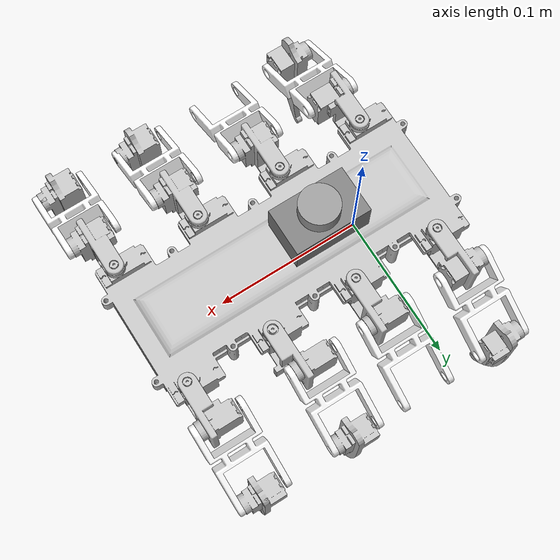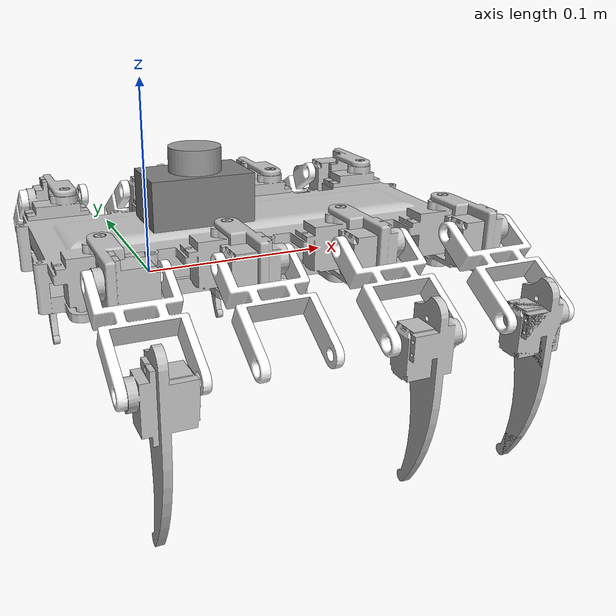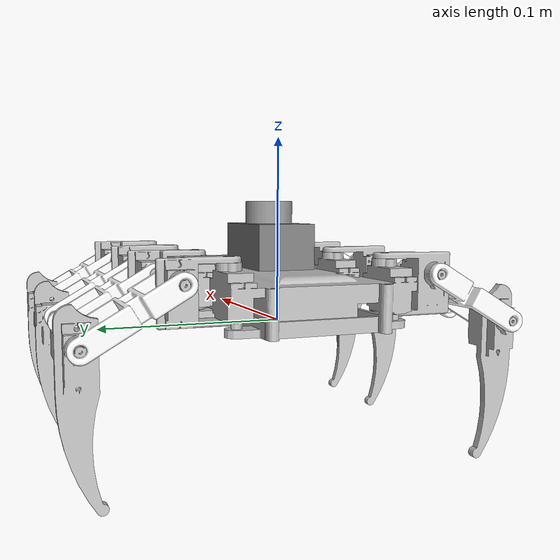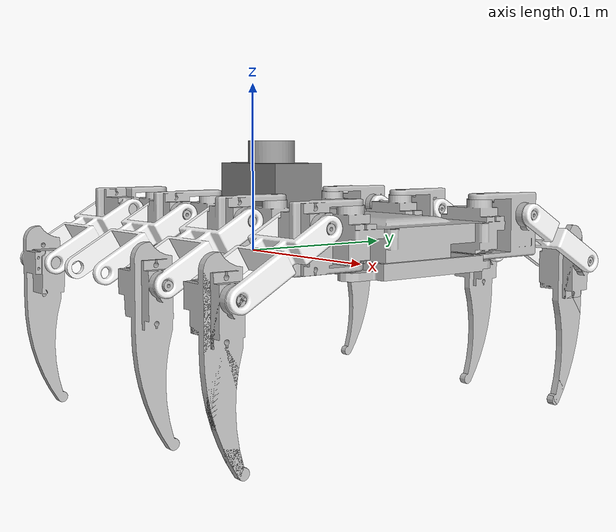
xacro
<?xml version="1.0"?>
<robot xmlns:xacro="http://www.ros.org/wiki/xacro" name="spider_description">
  <xacro:include filename="$(find spider_description)/urdf/lidar.gazebo" />
  <xacro:include filename="$(find spider_description)/urdf/realsense2_camera.xacro" />

  <link name="dummy_base" />

  <joint name="dummy_base_to_base_link" type="fixed">
    <parent link="dummy_base" />
    <child link="base_link" />
    <origin xyz="0 0 0" rpy="0 0 0" />
  </joint>
  <link name="base_link">
    <inertial>
      <origin xyz="0.0513553543804905 -0.00355010292388771 0.0158371951293718" rpy="0 0 0" />
      <mass value="0.206587820695411" />
      <inertia ixx="9.18101041743378E-05" ixy="-1.10969157176021E-06" ixz="-2.07334737671984E-08" iyy="0.000621158029436724" iyz="3.17880975410804E-08" izz="0.000699601373790156" />
    </inertial>
    <visual>
      <origin xyz="0 0 0" rpy="0 0 0" />
      <geometry>
        <mesh filename="$(find spider_description)/meshes/visual/base_link.STL" />
      </geometry>
      <material name="">
        <color rgba="0.752941176470588 0.752941176470588 0.752941176470588 1" />
      </material>
    </visual>
    <collision>
      <origin xyz="0 0 0" rpy="0 0 0" />
      <geometry>
        <mesh filename="$(find spider_description)/meshes/collision/base_link.STL" />
      </geometry>
    </collision>

  </link>
  <link name="RL1_coxa">
    <inertial>
      <origin xyz="-0.00349163844394271 0.017230005966643 0.0244390511872048" rpy="0 0 0" />
      <mass value="0.0118214531865819" />
      <inertia ixx="1.54720054808557E-06" ixy="-3.57557713352019E-08" ixz="-4.02762646820984E-08" iyy="1.03828147386784E-06" iyz="-8.80078006023775E-10" izz="1.47258288978444E-06" />
    </inertial>
    <visual>
      <origin xyz="0 0 0" rpy="0 0 0" />
      <geometry>
        <mesh filename="$(find spider_description)/meshes/visual/RL1_coxa.STL" />
      </geometry>
      <material name="">
        <color rgba="0.752941176470588 0.752941176470588 0.752941176470588 1" />
      </material>
    </visual>
    <collision>
      <origin xyz="0 0 0" rpy="0 0 0" />
      <geometry>
        <mesh filename="$(find spider_description)/meshes/collision/RL1_coxa.STL" />
      </geometry>
    </collision>
  </link>
  <joint name="joint1_coxa" type="continuous">
    <origin xyz="0.14757063197026 -0.0470606865446389 0.00464999999999999" rpy="1.5707963267949 0 0.216963279781621" />
    <parent link="base_link" />
    <child link="RL1_coxa" />
    <axis xyz="0 1 0" />
  </joint>
  <link name="RL1_fumer">
    <inertial>
      <origin xyz="-0.0264233888332985 -2.08166817117217E-17 -0.00234030420177739" rpy="0 0 0" />
      <mass value="0.00732061922605987" />
      <inertia ixx="1.66034801156123E-06" ixy="-8.99972506457694E-22" ixz="-1.499875031394E-09" iyy="3.3348950865199E-06" iyz="1.31159825877939E-21" izz="1.8515397312667E-06" />
    </inertial>
    <visual>
      <origin xyz="0 0 0" rpy="0 0 0" />
      <geometry>
        <mesh filename="$(find spider_description)/meshes/visual/RL1_fumer.STL" />
      </geometry>
      <material name="">
        <color rgba="1 1 1 1" />
      </material>
    </visual>
    <collision>
      <origin xyz="0 0 0" rpy="0 0 0" />
      <geometry>
        <mesh filename="$(find spider_description)/meshes/collision/RL1_fumer.STL" />
      </geometry>
    </collision>
  </link>
  <joint name="joint1_fumer" type="continuous">
    <origin xyz="-0.00591979008225604 0.0221000000000001 0.0268552804003611" rpy="-1.98602850950399 1.00791673675336 1.213911849099" />
    <parent link="RL1_coxa" />
    <child link="RL1_fumer" />
    <axis xyz="0 0 1" />
  </joint>
  <link name="RL1_tibia">
    <inertial>
      <origin xyz="0.00260154713513185 -0.0130975375024425 0.00072742607377918" rpy="0 0 0" />
      <mass value="0.013123891605465" />
      <inertia ixx="4.2299662226924E-06" ixy="1.19149413513681E-07" ixz="-1.17548988409948E-08" iyy="7.82194147309099E-07" iyz="-2.83284559215829E-07" izz="4.42455942176531E-06" />
    </inertial>
    <visual>
      <origin xyz="0 0 0" rpy="0 0 0" />
      <geometry>
        <mesh filename="$(find spider_description)/meshes/visual/RL1_tibia.STL" />
      </geometry>
      <material name="">
        <color rgba="0.752941176470588 0.752941176470588 0.752941176470588 1" />
      </material>
    </visual>
    <collision>
      <origin xyz="0 0 0" rpy="0 0 0" />
      <geometry>
        <mesh filename="$(find spider_description)/meshes/collision/RL1_tibia.STL" />
      </geometry>
    </collision>
  </link>
  <joint name="joint1_tibia" type="continuous">
    <origin xyz="-0.055 0 0" rpy="3.14159265358979 1.35383304701328 0.527393489709591" />
    <parent link="RL1_fumer" />
    <child link="RL1_tibia" />
    <axis xyz="-0.976555650922224 0 -0.215265093900221" />
  </joint>
  <link name="RL2_coxa">
    <inertial>
      <origin xyz="-0.00137410211994941 0.017230005966643 0.024648947347057" rpy="0 0 0" />
      <mass value="0.0118214531865819" />
      <inertia ixx="1.53973619894474E-06" ixy="-3.56987341340022E-08" ixz="-4.6080725279413E-08" iyy="1.03828147386784E-06" iyz="2.2022947808455E-09" izz="1.48004723892527E-06" />
    </inertial>
    <visual>
      <origin xyz="0 0 0" rpy="0 0 0" />
      <geometry>
        <mesh filename="$(find spider_description)/meshes/visual/RL2_coxa.STL" />
      </geometry>
      <material name="">
        <color rgba="0.752941176470588 0.752941176470588 0.752941176470588 1" />
      </material>
    </visual>
    <collision>
      <origin xyz="0 0 0" rpy="0 0 0" />
      <geometry>
        <mesh filename="$(find spider_description)/meshes/collision/RL2_coxa.STL" />
      </geometry>
    </collision>
  </link>
  <joint name="joint2_coxa" type="continuous">
    <origin xyz="0.0870706319702602 -0.0470606865446389 0.00464999999999997" rpy="1.5707963267949 0 0.130741621531395" />
    <parent link="base_link" />
    <child link="RL2_coxa" />
    <axis xyz="0 1 0" />
  </joint>
  <link name="RL2_fumer">
    <inertial>
      <origin xyz="-0.0264233888332987 6.24500451351651E-17 0.0581596957982228" rpy="0 0 0" />
      <mass value="0.00732061922605988" />
      <inertia ixx="1.66034801156124E-06" ixy="6.88214269644119E-22" ixz="-1.49987503139386E-09" iyy="3.33489508651991E-06" iyz="3.43796942092352E-22" izz="1.85153973126671E-06" />
    </inertial>
    <visual>
      <origin xyz="0 0 0" rpy="0 0 0" />
      <geometry>
        <mesh filename="$(find spider_description)/meshes/visual/RL2_fumer.STL" />
      </geometry>
      <material name="">
        <color rgba="1 1 1 1" />
      </material>
    </visual>
    <collision>
      <origin xyz="0 0 0" rpy="0 0 0" />
      <geometry>
        <mesh filename="$(find spider_description)/meshes/collision/RL2_fumer.STL" />
      </geometry>
    </collision>
  </link>
  <joint name="joint2_fumer" type="continuous">
    <origin xyz="0.0563985011948722 0.0221000000000001 0.0351526537116618" rpy="-1.82795682053227 1.0325993659782 1.3487143343647" />
    <parent link="RL2_coxa" />
    <child link="RL2_fumer" />
    <axis xyz="0 0 1" />
  </joint>
  <link name="RL2_tibia">
    <inertial>
      <origin xyz="-0.0562495143524853 -0.0130839593275274 -0.00677615060162512" rpy="0 0 0" />
      <mass value="0.013123891605465" />
      <inertia ixx="4.23019150195768E-06" ixy="7.84253861591576E-08" ixz="1.01977946227711E-09" iyy="7.65338483748999E-07" iyz="-1.6371410447347E-07" izz="4.44118980606013E-06" />
    </inertial>
    <visual>
      <origin xyz="0 0 0" rpy="0 0 0" />
      <geometry>
        <mesh filename="$(find spider_description)/meshes/visual/RL2_tibia.STL" />
      </geometry>
      <material name="">
        <color rgba="0.752941176470588 0.752941176470588 0.752941176470588 1" />
      </material>
    </visual>
    <collision>
      <origin xyz="0 0 0" rpy="0 0 0" />
      <geometry>
        <mesh filename="$(find spider_description)/meshes/collision/RL2_tibia.STL" />
      </geometry>
    </collision>
  </link>
  <joint name="joint2_tibia" type="continuous">
    <origin xyz="-0.055 0 0" rpy="-3.14159265358979 1.4400547052635 0.491910301591065" />
    <parent link="RL2_fumer" />
    <child link="RL2_tibia" />
    <axis xyz="-0.991465481571485 0 -0.130369470552824" />
  </joint>
  <link name="RL3_coxa">
    <inertial>
      <origin xyz="0.00349358134474833 0.017230005966643 0.0244387735236787" rpy="0 0 0" />
      <mass value="0.0118214531865818" />
      <inertia ixx="1.51968642178633E-06" ixy="-3.45709794269535E-08" ixz="-5.40202742068447E-08" iyy="1.03828147386784E-06" iyz="9.17044723735254E-09" izz="1.50009701608367E-06" />
    </inertial>
    <visual>
      <origin xyz="0 0 0" rpy="0 0 0" />
      <geometry>
        <mesh filename="$(find spider_description)/meshes/visual/RL3_coxa.STL" />
      </geometry>
      <material name="">
        <color rgba="0.752941176470588 0.752941176470588 0.752941176470588 1" />
      </material>
    </visual>
    <collision>
      <origin xyz="0 0 0" rpy="0 0 0" />
      <geometry>
        <mesh filename="$(find spider_description)/meshes/collision/RL3_coxa.STL" />
      </geometry>
    </collision>
  </link>
  <joint name="joint3_coxa" type="continuous">
    <origin xyz="0.0265706319702601 -0.0470606865446388 0.00464999999999998" rpy="1.5707963267949 0 -0.0669380319605713" />
    <parent link="base_link" />
    <child link="RL3_coxa" />
    <axis xyz="0 1 0" />
  </joint>
  <link name="RL3_fumer">
    <inertial>
      <origin xyz="-0.0264233888332993 -3.12250225675825E-16 0.118659695798224" rpy="0 0 0" />
      <mass value="0.00732061922605988" />
      <inertia ixx="1.66034801156124E-06" ixy="-5.29395592033938E-23" ixz="-1.49987503139564E-09" iyy="3.33489508651991E-06" iyz="-7.52681582497153E-23" izz="1.85153973126671E-06" />
    </inertial>
    <visual>
      <origin xyz="0 0 0" rpy="0 0 0" />
      <geometry>
        <mesh filename="$(find spider_description)/meshes/visual/RL3_fumer.STL" />
      </geometry>
      <material name="">
        <color rgba="1 1 1 1" />
      </material>
    </visual>
    <collision>
      <origin xyz="0 0 0" rpy="0 0 0" />
      <geometry>
        <mesh filename="$(find spider_description)/meshes/collision/RL3_fumer.STL" />
      </geometry>
    </collision>
  </link>
  <joint name="joint3_fumer" type="continuous">
    <origin xyz="0.122568440358491 0.0221000000000001 0.0193449587253901" rpy="-1.43751480215154 1.04333153380391 1.6861356410289" />
    <parent link="RL3_coxa" />
    <child link="RL3_fumer" />
    <axis xyz="0 0 1" />
  </joint>
  <link name="RL3_tibia">
    <inertial>
      <origin xyz="-0.118005534421714 -0.0130894519462948 0.00839605198202772" rpy="0 0 0" />
      <mass value="0.013123891605465" />
      <inertia ixx="4.23878065273637E-06" ixy="4.20082265127764E-08" ixz="4.18757931219034E-08" iyy="7.69154461537199E-07" iyz="-2.12494160023349E-07" izz="4.42878467749323E-06" />
    </inertial>
    <visual>
      <origin xyz="0 0 0" rpy="0 0 0" />
      <geometry>
        <mesh filename="$(find spider_description)/meshes/visual/RL3_tibia.STL" />
      </geometry>
      <material name="">
        <color rgba="0.752941176470588 0.752941176470588 0.752941176470588 1" />
      </material>
    </visual>
    <collision>
      <origin xyz="0 0 0" rpy="0 0 0" />
      <geometry>
        <mesh filename="$(find spider_description)/meshes/collision/RL3_tibia.STL" />
      </geometry>
    </collision>
  </link>
  <joint name="joint3_tibia" type="continuous">
    <origin xyz="-0.055 0 0" rpy="0 1.50385829483433 -2.63968666156776" />
    <parent link="RL3_fumer" />
    <child link="RL3_tibia" />
    <axis xyz="-0.997760486341758 0 0.0668880549504799" />
  </joint>
  <link name="RL4_coxa">
    <inertial>
      <origin xyz="0.000221643372700024 0.0172339889705058 0.0247738629223978" rpy="0 0 0" />
      <mass value="0.011831113051677" />
      <inertia ixx="1.51589381883954E-06" ixy="3.36933681099745E-08" ixz="5.44221588671393E-08" iyy="1.03946591481982E-06" iyz="1.04055511028782E-08" izz="1.50574484630922E-06" />
    </inertial>
    <visual>
      <origin xyz="0 0 0" rpy="0 0 0" />
      <geometry>
        <mesh filename="$(find spider_description)/meshes/visual/RL4_coxa.STL" />
      </geometry>
      <material name="">
        <color rgba="0.752941176470588 0.752941176470588 0.752941176470588 1" />
      </material>
    </visual>
    <collision>
      <origin xyz="0 0 0" rpy="0 0 0" />
      <geometry>
        <mesh filename="$(find spider_description)/meshes/collision/RL4_coxa.STL" />
      </geometry>
    </collision>
  </link>
  <joint name="joint4_coxa" type="continuous">
    <origin xyz="-0.0339293680297398 -0.0470606865446389 0.00465" rpy="1.5707963267949 0 0.105302517917499" />
    <parent link="base_link" />
    <child link="RL4_coxa" />
    <axis xyz="0 1 0" />
  </joint>
  <link name="RL4_fumer">
    <inertial>
      <origin xyz="-0.0264233888332989 6.93889390390723E-18 -0.176940304201777" rpy="0 0 0" />
      <mass value="0.00732061922605987" />
      <inertia ixx="1.66034801156123E-06" ixy="5.29395592033938E-22" ixz="-1.49987503139487E-09" iyy="3.3348950865199E-06" iyz="1.10684466970948E-22" izz="1.85153973126671E-06" />
    </inertial>
    <visual>
      <origin xyz="0 0 0" rpy="0 0 0" />
      <geometry>
        <mesh filename="$(find spider_description)/meshes/visual/RL4_fumer.STL" />
      </geometry>
      <material name="">
        <color rgba="1 1 1 1" />
      </material>
    </visual>
    <collision>
      <origin xyz="0 0 0" rpy="0 0 0" />
      <geometry>
        <mesh filename="$(find spider_description)/meshes/collision/RL4_fumer.STL" />
      </geometry>
    </collision>
  </link>
  <joint name="joint4_fumer" type="continuous">
    <origin xyz="0.177604166796266 0.0221000000000001 0.0464247771842149" rpy="1.3624761407313 1.03768167086435 1.39071609018261" />
    <parent link="RL4_coxa" />
    <child link="RL4_fumer" />
    <axis xyz="0 0 -1" />
  </joint>
  <link name="RL4_tibia">
    <inertial>
      <origin xyz="-0.175875204861774 -0.0124119057129758 -0.0227969872954879" rpy="0 0 0" />
      <mass value="0.013123891605465" />
      <inertia ixx="4.23942335897909E-06" ixy="1.02033754178209E-07" ixz="-4.08467258993433E-09" iyy="1.36774622886964E-06" iyz="-1.36758688607792E-06" izz="3.8295502039181E-06" />
    </inertial>
    <visual>
      <origin xyz="0 0 0" rpy="0 0 0" />
      <geometry>
        <mesh filename="$(find spider_description)/meshes/visual/RL4_tibia.STL" />
      </geometry>
      <material name="">
        <color rgba="0.752941176470588 0.752941176470588 0.752941176470588 1" />
      </material>
    </visual>
    <collision>
      <origin xyz="0 0 0" rpy="0 0 0" />
      <geometry>
        <mesh filename="$(find spider_description)/meshes/collision/RL4_tibia.STL" />
      </geometry>
    </collision>
  </link>
  <joint name="joint4_tibia" type="continuous">
    <origin xyz="-0.055 0 0" rpy="0 -1.4654938088774 -0.864064197891256" />
    <parent link="RL4_fumer" />
    <child link="RL4_tibia" />
    <axis xyz="-0.994460811195995 0 -0.105108015847522" />
  </joint>
  <link name="LL1_coxa">
    <inertial>
      <origin xyz="0.0170998828634738 0.0172339889705059 -0.0179272813314759" rpy="0 0 0" />
      <mass value="0.011831113051677" />
      <inertia ixx="1.45656947113537E-06" ixy="-1.69226594240046E-08" ixz="6.66890699376832E-09" iyy="1.03946591481982E-06" iyz="-3.09377139809669E-08" izz="1.56506919401288E-06" />
    </inertial>
    <visual>
      <origin xyz="0 0 0" rpy="0 0 0" />
      <geometry>
        <mesh filename="$(find spider_description)/meshes/visual/LL1_coxa.STL" />
      </geometry>
      <material name="">
        <color rgba="0.752941176470588 0.752941176470588 0.752941176470588 1" />
      </material>
    </visual>
    <collision>
      <origin xyz="0 0 0" rpy="0 0 0" />
      <geometry>
        <mesh filename="$(find spider_description)/meshes/collision/LL1_coxa.STL" />
      </geometry>
    </collision>
  </link>
  <joint name="joint5_coxa" type="continuous">
    <origin xyz="0.14757063197026 0.0399393134553611 0.00465000000000003" rpy="1.5707963267949 0 0.876029873391859" />
    <parent link="base_link" />
    <child link="LL1_coxa" />
    <axis xyz="0 -1 0" />
  </joint>
  <link name="LL1_fumer">
    <inertial>
      <origin xyz="-0.0264233888332986 0 0.00455969579822271" rpy="0 0 0" />
      <mass value="0.00732061922605989" />
      <inertia ixx="1.66034801156124E-06" ixy="-2.64697796016969E-22" ixz="-1.49987503139553E-09" iyy="3.33489508651991E-06" iyz="1.79363776074467E-21" izz="1.85153973126671E-06" />
    </inertial>
    <visual>
      <origin xyz="0 0 0" rpy="0 0 0" />
      <geometry>
        <mesh filename="$(find spider_description)/meshes/visual/LL1_fumer.STL" />
      </geometry>
      <material name="">
        <color rgba="1 1 1 1" />
      </material>
    </visual>
    <collision>
      <origin xyz="0 0 0" rpy="0 0 0" />
      <geometry>
        <mesh filename="$(find spider_description)/meshes/collision/LL1_fumer.STL" />
      </geometry>
    </collision>
  </link>
  <joint name="joint5_fumer" type="continuous">
    <origin xyz="0.0211255891188233 0.0221 -0.0176056662578457" rpy="-2.74678119264294 -0.58768354984189 2.49709435666674" />
    <parent link="LL1_coxa" />
    <child link="LL1_fumer" />
    <axis xyz="0 0 -1" />
  </joint>
  <link name="LL1_tibia">
    <inertial>
      <origin xyz="-0.00279894261734365 -0.0130976424430121 -0.00313843380108422" rpy="0 0 0" />
      <mass value="0.013123891605465" />
      <inertia ixx="4.36602526509336E-06" ixy="-2.59110649699593E-07" ixz="-7.85274951562137E-08" iyy="7.97432607148881E-07" iyz="2.87128236854985E-07" izz="4.27326191952455E-06" />
    </inertial>
    <visual>
      <origin xyz="0 0 0" rpy="0 0 0" />
      <geometry>
        <mesh filename="$(find spider_description)/meshes/visual/LL1_tibia.STL" />
      </geometry>
      <material name="">
        <color rgba="0.752941176470588 0.752941176470588 0.752941176470588 1" />
      </material>
    </visual>
    <collision>
      <origin xyz="0 0 0" rpy="0 0 0" />
      <geometry>
        <mesh filename="$(find spider_description)/meshes/collision/LL1_tibia.STL" />
      </geometry>
    </collision>
  </link>
  <joint name="joint5_tibia" type="continuous">
    <origin xyz="-0.0549999999999999 0 0" rpy="3.14159265358979 0.694766453403041 2.59196218761899" />
    <parent link="LL1_fumer" />
    <child link="LL1_tibia" />
    <axis xyz="0.640206045739847 0 0.768203240684487" />
  </joint>
  <link name="LL2_coxa">
    <inertial>
      <origin xyz="0.0127223107624808 0.0169176334399643 -0.0226841712591478" rpy="0 0 0" />
      <mass value="0.011831113051677" />
      <inertia ixx="1.56088112402009E-06" ixy="-2.81601853556498E-08" ixz="2.19396104805271E-08" iyy="1.03946591481982E-06" iyz="-2.12255249861135E-08" izz="1.4607575411285E-06" />
    </inertial>
    <visual>
      <origin xyz="0 0 0" rpy="0 0 0" />
      <geometry>
        <mesh filename="$(find spider_description)/meshes/visual/LL2_coxa.STL" />
      </geometry>
      <material name="">
        <color rgba="0.752941176470588 0.752941176470588 0.752941176470588 1" />
      </material>
    </visual>
    <collision>
      <origin xyz="0 0 0" rpy="0 0 0" />
      <geometry>
        <mesh filename="$(find spider_description)/meshes/collision/LL2_coxa.STL" />
      </geometry>
    </collision>
  </link>
  <joint name="joint6_coxa" type="continuous">
    <origin xyz="0.0870706319702601 0.0399393134553608 0.00464999999999998" rpy="1.5707963267949 0 0.840128894013488" />
    <parent link="base_link" />
    <child link="LL2_coxa" />
    <axis xyz="0 -1 0" />
  </joint>
  <link name="LL2_fumer">
    <inertial>
      <origin xyz="-0.0264233888332989 3.46944695195361E-17 0.0725596957982222" rpy="0 0 0" />
      <mass value="0.00732061922605988" />
      <inertia ixx="1.66034801156123E-06" ixy="-1.11173074327127E-21" ixz="-1.49987503139377E-09" iyy="3.33489508651991E-06" iyz="-3.43796942092352E-22" izz="1.85153973126671E-06" />
    </inertial>
    <visual>
      <origin xyz="0 0 0" rpy="0 0 0" />
      <geometry>
        <mesh filename="$(find spider_description)/meshes/visual/LL2_fumer.STL" />
      </geometry>
      <material name="">
        <color rgba="1 1 1 1" />
      </material>
    </visual>
    <collision>
      <origin xyz="0 0 0" rpy="0 0 0" />
      <geometry>
        <mesh filename="$(find spider_description)/meshes/collision/LL2_fumer.STL" />
      </geometry>
    </collision>
  </link>
  <joint name="joint6_fumer" type="continuous">
    <origin xyz="0.0608557453435872 0.0221 0.026703525210662" rpy="-2.72035311532009 -0.616222550074482 2.48212725475599" />
    <parent link="LL2_coxa" />
    <child link="LL2_fumer" />
    <axis xyz="0 0 -1" />
  </joint>
  <link name="LL2_tibia">
    <inertial>
      <origin xyz="-0.01480952139402 -0.013098396107006 -0.0165422174946064" rpy="0 0 0" />
      <mass value="0.013123891605465" />
      <inertia ixx="4.36428688191597E-06" ixy="-2.1723438599018E-07" ixz="-8.58851441227647E-08" iyy="7.89056082804284E-07" iyz="2.68586343447735E-07" izz="4.28337682704655E-06" />
    </inertial>
    <visual>
      <origin xyz="0 0 0" rpy="0 0 0" />
      <geometry>
        <mesh filename="$(find spider_description)/meshes/visual/LL2_tibia.STL" />
      </geometry>
      <material name="">
        <color rgba="0.752941176470588 0.752941176470588 0.752941176470588 1" />
      </material>
    </visual>
    <collision>
      <origin xyz="0 0 0" rpy="0 0 0" />
      <geometry>
        <mesh filename="$(find spider_description)/meshes/collision/LL2_tibia.STL" />
      </geometry>
    </collision>
  </link>
  <joint name="joint6_tibia" type="continuous">
    <origin xyz="-0.0549999999999999 0 0.0500000000000001" rpy="3.14159265358979 0.730667432781409 2.60353309806751" />
    <parent link="LL2_fumer" />
    <child link="LL2_tibia" />
    <axis xyz="0.667366840256722 0 0.744729145747471" />
  </joint>
  <link name="LL3_coxa">
    <inertial>
      <origin xyz="0.0139602506872404 0.0172339889705058 -0.0204671642059132" rpy="0 0 0" />
      <mass value="0.011831113051677" />
      <inertia ixx="1.46157119792145E-06" ixy="-2.17239801391936E-08" ixz="2.37095554539394E-08" iyy="1.03946591481982E-06" iyz="-2.7777459121755E-08" izz="1.56006746722729E-06" />
    </inertial>
    <visual>
      <origin xyz="0 0 0" rpy="0 0 0" />
      <geometry>
        <mesh filename="$(find spider_description)/meshes/visual/LL3_coxa.STL" />
      </geometry>
      <material name="">
        <color rgba="0.752941176470588 0.752941176470588 0.752941176470588 1" />
      </material>
    </visual>
    <collision>
      <origin xyz="0 0 0" rpy="0 0 0" />
      <geometry>
        <mesh filename="$(find spider_description)/meshes/collision/LL3_coxa.STL" />
      </geometry>
    </collision>
  </link>
  <joint name="joint7_coxa" type="continuous">
    <origin xyz="0.0265706319702602 0.0399393134553611 0.00464999999999998" rpy="1.5707963267949 0 0.712846787592376" />
    <parent link="base_link" />
    <child link="LL3_coxa" />
    <axis xyz="0 -1 0" />
  </joint>
  <link name="LL3_fumer">
    <inertial>
      <origin xyz="-0.0264233888332988 1.66533453693773E-16 0.125559695798222" rpy="0 0 0" />
      <mass value="0.00732061922605986" />
      <inertia ixx="1.66034801156123E-06" ixy="6.88214269644119E-22" ixz="-1.49987503139546E-09" iyy="3.3348950865199E-06" iyz="1.01789636639699E-22" izz="1.85153973126671E-06" />
    </inertial>
    <visual>
      <origin xyz="0 0 0" rpy="0 0 0" />
      <geometry>
        <mesh filename="$(find spider_description)/meshes/visual/LL3_fumer.STL" />
      </geometry>
      <material name="">
        <color rgba="1 1 1 1" />
      </material>
    </visual>
    <collision>
      <origin xyz="0 0 0" rpy="0 0 0" />
      <geometry>
        <mesh filename="$(find spider_description)/meshes/collision/LL3_fumer.STL" />
      </geometry>
    </collision>
  </link>
  <joint name="joint7_fumer" type="continuous">
    <origin xyz="0.10952160956792 0.0221 0.0583289553965433" rpy="-2.61722554755421 -0.71438242643614 2.41835522432309" />
    <parent link="LL3_coxa" />
    <child link="LL3_fumer" />
    <axis xyz="0 0 -1" />
  </joint>
  <link name="LL3_tibia">
    <inertial>
      <origin xyz="-0.094631241235736 -0.00999543048455966 -0.0821821673541989" rpy="0 0 0" />
      <mass value="0.021123795973342" />
      <inertia ixx="4.99508664772741E-06" ixy="-1.3939361777078E-07" ixz="-2.6733864336624E-07" iyy="1.32635282258011E-06" iyz="1.78140065284283E-07" izz="5.0128656775895E-06" />
    </inertial>
    <visual>
      <origin xyz="0 0 0" rpy="0 0 0" />
      <geometry>
        <mesh filename="$(find spider_description)/meshes/visual/LL3_tibia.STL" />
      </geometry>
      <material name="">
        <color rgba="0.752941176470588 0.752941176470588 0.752941176470588 1" />
      </material>
    </visual>
    <collision>
      <origin xyz="0 0 0" rpy="0 0 0" />
      <geometry>
        <mesh filename="$(find spider_description)/meshes/collision/LL3_tibia.STL" />
      </geometry>
    </collision>
  </link>
  <joint name="joint7_tibia" type="continuous">
    <origin xyz="-0.0549999999999999 0 0" rpy="3.14159265358979 0.857949539202522 2.63388766827357" />
    <parent link="LL3_fumer" />
    <child link="LL3_tibia" />
    <axis xyz="0.756503173249345 0 0.65399002199091" />
  </joint>
  <link name="LL4_coxa">
    <inertial>
      <origin xyz="0.000589847633677063 0.017230005966643 -0.0246801710229706" rpy="0 0 0" />
      <mass value="0.0118214531865818" />
      <inertia ixx="1.53674766199004E-06" ixy="3.56106840430809E-08" ixz="-4.7884074095185E-08" iyy="1.03828147386784E-06" iyz="-3.33600105752003E-09" izz="1.48303577587997E-06" />
    </inertial>
    <visual>
      <origin xyz="0 0 0" rpy="0 0 0" />
      <geometry>
        <mesh filename="$(find spider_description)/meshes/visual/LL4_coxa.STL" />
      </geometry>
      <material name="">
        <color rgba="0.752941176470588 0.752941176470588 0.752941176470588 1" />
      </material>
    </visual>
    <collision>
      <origin xyz="0 0 0" rpy="0 0 0" />
      <geometry>
        <mesh filename="$(find spider_description)/meshes/collision/LL4_coxa.STL" />
      </geometry>
    </collision>
  </link>
  <joint name="joint8_coxa" type="continuous">
    <origin xyz="-0.0339293680297398 0.039939313455361 0.00464999999999999" rpy="1.5707963267949 0 0.0989474826412098" />
    <parent link="base_link" />
    <child link="LL4_coxa" />
    <axis xyz="0 -1 0" />
  </joint>
  <link name="LL4_fumer">
    <inertial>
      <origin xyz="-0.0264233888332985 1.38777878078145E-17 -0.183840304201777" rpy="0 0 0" />
      <mass value="0.00732061922605988" />
      <inertia ixx="1.66034801156124E-06" ixy="-4.76456032830544E-22" ixz="-1.49987503139489E-09" iyy="3.33489508651991E-06" iyz="-1.02981347516547E-22" izz="1.85153973126671E-06" />
    </inertial>
    <visual>
      <origin xyz="0 0 0" rpy="0 0 0" />
      <geometry>
        <mesh filename="$(find spider_description)/meshes/visual/LL4_fumer.STL" />
      </geometry>
      <material name="">
        <color rgba="1 1 1 1" />
      </material>
    </visual>
    <collision>
      <origin xyz="0 0 0" rpy="0 0 0" />
      <geometry>
        <mesh filename="$(find spider_description)/meshes/collision/LL4_fumer.STL" />
      </geometry>
    </collision>
  </link>
  <joint name="joint8_fumer" type="continuous">
    <origin xyz="0.18332884514746 0.0221 -0.0094358114064664" rpy="1.37480179147324 -1.03878671960298 1.74025786812046" />
    <parent link="LL4_coxa" />
    <child link="LL4_fumer" />
    <axis xyz="0 0 1" />
  </joint>
  <link name="LL4_tibia">
    <inertial>
      <origin xyz="-0.180394375659539 -0.0130639420354095 -0.0372472679266889" rpy="0 0 0" />
      <mass value="0.013123891605465" />
      <inertia ixx="4.2246722620473E-06" ixy="-1.76333803207243E-07" ixz="9.44080756640397E-09" iyy="8.5838893710165E-07" iyz="5.7833463564039E-07" izz="4.35365859261787E-06" />
    </inertial>
    <visual>
      <origin xyz="0 0 0" rpy="0 0 0" />
      <geometry>
        <mesh filename="$(find spider_description)/meshes/visual/LL4_tibia.STL" />
      </geometry>
      <material name="">
        <color rgba="0.752941176470588 0.752941176470588 0.752941176470588 1" />
      </material>
    </visual>
    <collision>
      <origin xyz="0 0 0" rpy="0 0 0" />
      <geometry>
        <mesh filename="$(find spider_description)/meshes/collision/LL4_tibia.STL" />
      </geometry>
    </collision>
  </link>
  <joint name="joint8_tibia" type="continuous">
    <origin xyz="-0.0549999999999999 0 0" rpy="0 -1.36202617641292 -2.53016856049393" />
    <parent link="LL4_fumer" />
    <child link="LL4_tibia" />
    <axis xyz="0.978286549337221 0 0.207256911551514" />
  </joint>
  <ros2_control name="LeggedSystemPositionOnly" type="system">
    <hardware>
      <plugin>gz_ros2_control/GazeboSimSystem</plugin>
    </hardware>

    <joint name="joint1_coxa">
      <command_interface name="position" />
      <state_interface name="position" />
      <state_interface name="velocity" />
    </joint>
    <joint name="joint1_fumer">
      <command_interface name="position" />
      <state_interface name="position" />
      <state_interface name="velocity" />
    </joint>
    <joint name="joint1_tibia">
      <command_interface name="position" />
      <state_interface name="position" />
      <state_interface name="velocity" />
    </joint>

    <joint name="joint2_coxa">
      <command_interface name="position" />
      <state_interface name="position" />
      <state_interface name="velocity" />
    </joint>
    <joint name="joint2_fumer">
      <command_interface name="position" />
      <state_interface name="position" />
      <state_interface name="velocity" />
    </joint>
    <joint name="joint2_tibia">
      <command_interface name="position" />
      <state_interface name="position" />
      <state_interface name="velocity" />
    </joint>

    <joint name="joint3_coxa">
      <command_interface name="position" />
      <state_interface name="position" />
      <state_interface name="velocity" />
    </joint>
    <joint name="joint3_fumer">
      <command_interface name="position" />
      <state_interface name="position" />
      <state_interface name="velocity" />
    </joint>
    <joint name="joint3_tibia">
      <command_interface name="position" />
      <state_interface name="position" />
      <state_interface name="velocity" />
    </joint>

    <joint name="joint4_coxa">
      <command_interface name="position" />
      <state_interface name="position" />
      <state_interface name="velocity" />
    </joint>
    <joint name="joint4_fumer">
      <command_interface name="position" />
      <state_interface name="position" />
      <state_interface name="velocity" />
    </joint>
    <joint name="joint4_tibia">
      <command_interface name="position" />
      <state_interface name="position" />
      <state_interface name="velocity" />
    </joint>

    <joint name="joint5_coxa">
      <command_interface name="position" />
      <state_interface name="position" />
      <state_interface name="velocity" />
    </joint>
    <joint name="joint5_fumer">
      <command_interface name="position" />
      <state_interface name="position" />
      <state_interface name="velocity" />
    </joint>
    <joint name="joint5_tibia">
      <command_interface name="position" />
      <state_interface name="position" />
      <state_interface name="velocity" />
    </joint>

    <joint name="joint6_coxa">
      <command_interface name="position" />
      <state_interface name="position" />
      <state_interface name="velocity" />
    </joint>
    <joint name="joint6_fumer">
      <command_interface name="position" />
      <state_interface name="position" />
      <state_interface name="velocity" />
    </joint>
    <joint name="joint6_tibia">
      <command_interface name="position" />
      <state_interface name="position" />
      <state_interface name="velocity" />
    </joint>

    <joint name="joint7_coxa">
      <command_interface name="position" />
      <state_interface name="position" />
      <state_interface name="velocity" />
    </joint>
    <joint name="joint7_fumer">
      <command_interface name="position" />
      <state_interface name="position" />
      <state_interface name="velocity" />
    </joint>
    <joint name="joint7_tibia">
      <command_interface name="position" />
      <state_interface name="position" />
      <state_interface name="velocity" />
    </joint>

    <joint name="joint8_coxa">
      <command_interface name="position" />
      <state_interface name="position" />
      <state_interface name="velocity" />
    </joint>
    <joint name="joint8_fumer">
      <command_interface name="position" />
      <state_interface name="position" />
      <state_interface name="velocity" />
    </joint>
    <joint name="joint8_tibia">
      <command_interface name="position" />
      <state_interface name="position" />
      <state_interface name="velocity" />
    </joint>
  </ros2_control>
  <!-- ############ GAZEBO ROS2 CONTROL PLUGIN ############ -->
  <gazebo>
    <plugin name="ign_ros2_control::IgnitionROS2ControlPlugin" filename="libgz_ros2_control-system.so">
      <parameters>
      $(find spider_description)/config/controller.yaml
      </parameters>
      <parameters>
      $(find spider_description)/config/gaz_ros2_ctl_use_sim.yaml
      </parameters>
      <!-- Output -->
      <odometry_frame>odom</odometry_frame>
      <robot_base_frame>base_link</robot_base_frame>

      <publish_odom>true</publish_odom>
    </plugin>
  </gazebo>

</robot>

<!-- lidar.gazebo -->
<robot xmlns:xacro="http://www.ros.org/wiki/xacro">

    <!-- LIDAR joint (attached to base_link) -->
    <joint name="lidar_joint" type="fixed">
        <parent link="base_link"/>
        <child link="lidar"/>
        <origin xyz="-0.012455 0.0027058 0.053" rpy="0 0 3.1416"/>
    </joint>

    <!-- LIDAR link -->
    <link name="lidar">
        <inertial>
            <origin xyz="-0.0378095598656957 0.00725748198525124 0.00634999999999999" rpy="0 0 0" />
            <mass value="0.00732574602666473" />
            <inertia ixx="4.34735685821503E-07" ixy="0" ixz="0" iyy="4.34735685821503E-07" iyz="0" izz="6.72543108869548E-07" />
        </inertial>

        <visual>
            <origin xyz="0 0 0" rpy="0 0 0" />
            <geometry>
                <mesh filename="$(find spider_description)/meshes/visual/lidar.STL" />
            </geometry>
            <material name="gray"/>
        </visual>

        <collision>
            <origin xyz="0 0 0" rpy="0 0 0" />
            <geometry>
                <mesh filename="$(find spider_description)/meshes/collision/lidar.STL" />
            </geometry>
        </collision>
    </link>

    <gazebo reference="lidar">
        <material>Gazebo/green</material>
    </gazebo>

    <gazebo reference="camera_link">
        <material>Gazebo/Black</material>
    </gazebo>

    <gazebo reference="lidar">
        <sensor name="lidar" type="gpu_lidar">
            <always_on>true</always_on>
            <visualize>true</visualize>
            <pose>0 0 0 0 0 0</pose>
            <update_rate>100</update_rate>
            <topic>scan</topic>
            <gz_frame_id>lidar</gz_frame_id>
            <lidar>
                <scan>
                    <horizontal>
                        <samples>360</samples>
                        <resolution>1.0</resolution>
                        <min_angle>-1.57</min_angle>
                        <max_angle>+1.57</max_angle>
                    </horizontal>
                    <vertical>
                        <samples>1</samples>
                        <resolution>0.01</resolution>
                        <min_angle>0</min_angle>
                        <max_angle>0</max_angle>
                    </vertical>
                </scan>
                <range>
                    <min>0.2</min>
                    <max>8.0</max>
                    <resolution>0.02</resolution>
                </range>
                <noise>
                    <type>gaussian</type>
                    <mean>0.0</mean>
                    <stddev>0.01</stddev>
                </noise>
            </lidar>
        </sensor>
    </gazebo>

</robot>

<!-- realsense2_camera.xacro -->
<robot xmlns:xacro="http://www.ros.org/wiki/xacro">

    <link name="camera_link">
        <inertial>
            <origin xyz="-0.037132566899715 0.00732744278960867 0.0127" rpy="0 0 0" />
            <mass value="0.0451110769034359" />
            <inertia ixx="6.52411581573381E-06" ixy="-2.20031957127054E-21" ixz="1.80557491338072E-22" iyy="1.3300760125992E-05" iyz="3.78205861915377E-22" izz="1.49742322125557E-05" />
        </inertial>
        <visual>
            <origin xyz="0 0 0" rpy="0 0 0" />
            <geometry>
                <mesh filename="$(find spider_description)/meshes/visual/camera_link.STL" />
            </geometry>
            <material name="">
                <color rgba="0.494 0.494 0.494 1" />
            </material>
        </visual>
        <collision>
            <origin xyz="0 0 0" rpy="0 0 0" />
            <geometry>
                <mesh filename="$(find spider_description)/meshes/collision/camera_link.STL" />
            </geometry>
        </collision>
    </link>

    <joint name="camera_frame" type="fixed">
        <origin xyz="-0.012455 0.0027058 0.0276" rpy="0 0 3.1416" />
        <parent link="base_link" />
        <child link="camera_link" />
    </joint>

    <!-- Fixed Gazebo RGB-D camera -->
    <gazebo reference="camera_link">
        <sensor name="camera_sensor" type="rgbd_camera">
            <ignition_frame_id>camera_link</ignition_frame_id>
            <camera name="camera_sensor">
                <horizontal_fov>1.2043</horizontal_fov>
                <lens>
                    <intrinsics>
                        <fx>915.3</fx>
                        <fy>914.03</fy>
                        <cx>642.72</cx>
                        <cy>361.98</cy>
                        <s>0</s>
                    </intrinsics>
                </lens>
                <distortion>
                    <k1>0.0</k1>
                    <k2>0.0</k2>
                    <k3>0.0</k3>
                    <p1>0.0</p1>
                    <p2>0.0</p2>
                    <center>0.5 0.5</center>
                </distortion>
                <image>
                    <width>1280</width>
                    <height>720</height>
                    <format>R8G8B8</format>
                </image>
                <clip>
                    <near>0.1</near>
                    <far>100</far>
                </clip>
                <depth_camera>
                    <clip>
                        <near>0.1</near>
                        <far>100</far>
                    </clip>
                </depth_camera>
                <noise>
                    <type>gaussian</type>
                    <mean>0.0</mean>
                    <stddev>0.007</stddev>
                </noise>
            </camera>
            <always_on>1</always_on>
            <update_rate>5</update_rate>
            <visualize>0</visualize>
            <topic>camera</topic>
        </sensor>
    </gazebo>

</robot>
